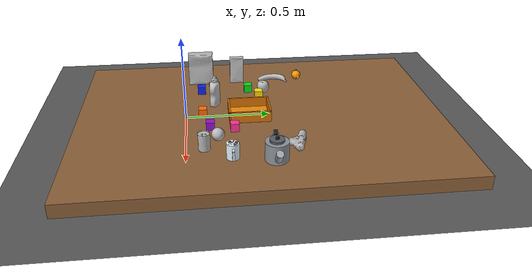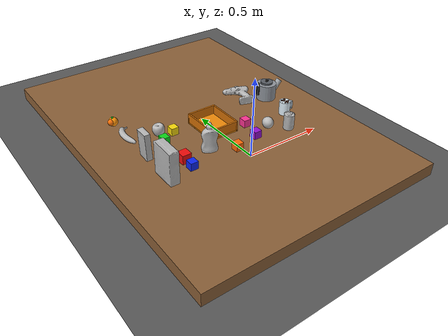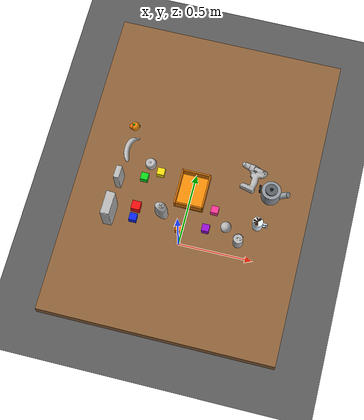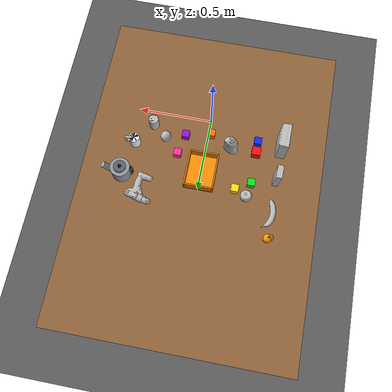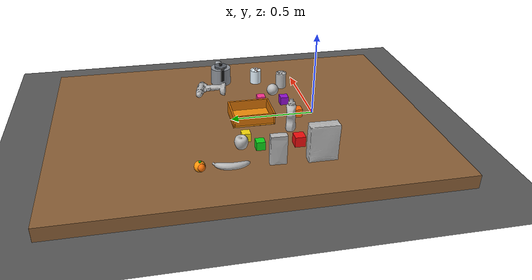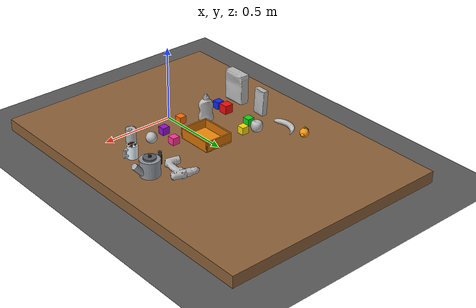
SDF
<?xml version="1.0"?>
<sdf version="1.7">
  <world name="ur3_pick_place">
    <physics name="baseline_physics" type="ode">
      <max_step_size>0.001</max_step_size>
      <real_time_factor>1.0</real_time_factor>
      <gravity>0 0 -9.81</gravity>
    </physics>

    <plugin filename="libignition-gazebo-physics-system.so"
            name="ignition::gazebo::systems::Physics"/>
    <plugin filename="libignition-gazebo-user-commands-system.so"
            name="ignition::gazebo::systems::UserCommands"/>
    <plugin filename="libignition-gazebo-scene-broadcaster-system.so"
            name="ignition::gazebo::systems::SceneBroadcaster"/>
    <plugin filename="libignition-gazebo-sensors-system.so"
            name="ignition::gazebo::systems::Sensors">
      <render_engine>ogre2</render_engine>
    </plugin>
    <plugin filename="libignition-gazebo-contact-system.so"
            name="ignition::gazebo::systems::Contact"/>

    <scene>
      <ambient>0.45 0.45 0.45 1</ambient>
      <background>0.75 0.80 0.85 1</background>
      <shadows>true</shadows>
    </scene>

    <light name="key_light" type="directional">
      <pose>0 0 2 0 0 0</pose>
      <cast_shadows>true</cast_shadows>
      <diffuse>0.9 0.9 0.9 1</diffuse>
      <specular>0.2 0.2 0.2 1</specular>
      <direction>-0.4 0.2 -1.0</direction>
    </light>

    <model name="ground_plane">
      <static>true</static>
      <pose>0 0 -0.081 0 0 0</pose>
      <link name="link">
        <collision name="collision">
          <geometry><plane><normal>0 0 1</normal><size>10 10</size></plane></geometry>
        </collision>
        <visual name="visual">
          <geometry><plane><normal>0 0 1</normal><size>10 10</size></plane></geometry>
          <material><ambient>0.25 0.25 0.25 1</ambient><diffuse>0.35 0.35 0.35 1</diffuse></material>
        </visual>
      </link>
      <plugin filename="ignition-gazebo-label-system" name="ignition::gazebo::systems::Label"><label>41</label></plugin>
    </model>

    <model name="work_table">
      <static>true</static>
      <pose>0 0.45 -0.04 0 0 0</pose>
      <link name="table_link">
        <collision name="collision">
          <geometry><box><size>1.6 2.2 0.08</size></box></geometry>
        </collision>
        <visual name="visual">
          <geometry><box><size>1.6 2.2 0.08</size></box></geometry>
          <material><ambient>0.45 0.30 0.18 1</ambient><diffuse>0.55 0.38 0.22 1</diffuse></material>
        </visual>
      </link>
      <plugin filename="ignition-gazebo-label-system" name="ignition::gazebo::systems::Label"><label>40</label></plugin>
    </model>

    <model name="top_table_camera">
      <static>true</static>
      <!-- SDF camera looks along local +X; +pi/2 pitch maps it toward -Z. -->
      <pose>0 0.45 1.80 0 1.57079632679 0</pose>
      <link name="top_table_camera_link">
        <sensor name="top_table_rgbd" type="rgbd_camera">
          <camera>
            <horizontal_fov>1.10</horizontal_fov>
            <image>
              <width>640</width>
              <height>480</height>
              <format>R8G8B8</format>
            </image>
            <clip><near>0.10</near><far>3.0</far></clip>
            <depth_camera>
              <clip><near>0.10</near><far>3.0</far></clip>
            </depth_camera>
            <optical_frame_id>top_table_camera_optical_frame</optical_frame_id>
          </camera>
          <always_on>true</always_on>
          <update_rate>30</update_rate>
          <visualize>true</visualize>
          <topic>/top_table_camera</topic>
          <gz_frame_id>top_table_camera_optical_frame</gz_frame_id>
        </sensor>
      </link>
    </model>

    <model name="red_cube">
      <!-- Pick slot: left of the robot (-X) and forward (+Y). -->
      <pose>-0.34 0.18 0.03 0 0 0</pose>
      <link name="cube_link">
        <inertial><mass>0.08</mass><inertia><ixx>0.000048</ixx><iyy>0.000048</iyy><izz>0.000048</izz></inertia></inertial>
        <collision name="collision">
          <geometry><box><size>0.06 0.06 0.06</size></box></geometry>
          <surface><friction><ode><mu>1.2</mu><mu2>1.2</mu2></ode></friction></surface>
        </collision>
        <visual name="visual">
          <geometry><box><size>0.06 0.06 0.06</size></box></geometry>
          <material><ambient>0.8 0.03 0.03 1</ambient><diffuse>0.95 0.05 0.05 1</diffuse></material>
        </visual>
      </link>
      <!-- Ground-truth oracle for perception-layer validation. -->
      <plugin filename="ignition-gazebo-pose-publisher-system"
              name="gz::sim::systems::PosePublisher">
        <publish_link_pose>false</publish_link_pose>
        <publish_collision_pose>false</publish_collision_pose>
        <publish_visual_pose>false</publish_visual_pose>
        <publish_nested_model_pose>false</publish_nested_model_pose>
        <use_pose_vector_msg>true</use_pose_vector_msg>
        <static_publisher>false</static_publisher>
        <update_frequency>15</update_frequency>
      </plugin>
      <plugin filename="ignition-gazebo-label-system" name="ignition::gazebo::systems::Label"><label>1</label></plugin>
    </model>

    <model name="blue_cube">
      <pose>-0.34 0.10 0.025 0 0 0</pose>
      <link name="cube_link">
        <inertial><mass>0.06</mass><inertia><ixx>0.000025</ixx><iyy>0.000025</iyy><izz>0.000025</izz></inertia></inertial>
        <collision name="collision"><geometry><box><size>0.05 0.05 0.05</size></box></geometry></collision>
        <visual name="visual"><geometry><box><size>0.05 0.05 0.05</size></box></geometry><material><ambient>0.03 0.10 0.8 1</ambient><diffuse>0.05 0.15 0.95 1</diffuse></material></visual>
      </link>
      <plugin filename="ignition-gazebo-label-system" name="ignition::gazebo::systems::Label"><label>2</label></plugin>
    </model>

    <model name="green_cube">
      <pose>-0.34 0.40 0.025 0 0 0</pose>
      <link name="cube_link">
        <inertial><mass>0.06</mass><inertia><ixx>0.000025</ixx><iyy>0.000025</iyy><izz>0.000025</izz></inertia></inertial>
        <collision name="collision"><geometry><box><size>0.05 0.05 0.05</size></box></geometry></collision>
        <visual name="visual"><geometry><box><size>0.05 0.05 0.05</size></box></geometry><material><ambient>0.03 0.65 0.08 1</ambient><diffuse>0.05 0.85 0.10 1</diffuse></material></visual>
      </link>
      <plugin filename="ignition-gazebo-label-system" name="ignition::gazebo::systems::Label"><label>3</label></plugin>
    </model>

    <model name="yellow_cube">
      <pose>-0.24 0.46 0.025 0 0 0</pose>
      <link name="cube_link">
        <inertial><mass>0.06</mass><inertia><ixx>0.000025</ixx><iyy>0.000025</iyy><izz>0.000025</izz></inertia></inertial>
        <collision name="collision"><geometry><box><size>0.05 0.05 0.05</size></box></geometry></collision>
        <visual name="visual"><geometry><box><size>0.05 0.05 0.05</size></box></geometry><material><ambient>0.80 0.68 0.02 1</ambient><diffuse>0.98 0.86 0.04 1</diffuse></material></visual>
      </link>
      <plugin filename="ignition-gazebo-label-system" name="ignition::gazebo::systems::Label"><label>4</label></plugin>
    </model>

    <model name="orange_cube">
      <pose>-0.02 0.10 0.025 0 0 0</pose>
      <link name="cube_link">
        <inertial><mass>0.06</mass><inertia><ixx>0.000025</ixx><iyy>0.000025</iyy><izz>0.000025</izz></inertia></inertial>
        <collision name="collision"><geometry><box><size>0.05 0.05 0.05</size></box></geometry></collision>
        <visual name="visual"><geometry><box><size>0.05 0.05 0.05</size></box></geometry><material><ambient>0.88 0.28 0.01 1</ambient><diffuse>1.00 0.42 0.02 1</diffuse></material></visual>
      </link>
      <plugin filename="ignition-gazebo-label-system" name="ignition::gazebo::systems::Label"><label>5</label></plugin>
    </model>

    <model name="purple_cube">
      <pose>0.15 0.14 0.025 0 0 0</pose>
      <link name="cube_link">
        <inertial><mass>0.06</mass><inertia><ixx>0.000025</ixx><iyy>0.000025</iyy><izz>0.000025</izz></inertia></inertial>
        <collision name="collision"><geometry><box><size>0.05 0.05 0.05</size></box></geometry></collision>
        <visual name="visual"><geometry><box><size>0.05 0.05 0.05</size></box></geometry><material><ambient>0.42 0.03 0.62 1</ambient><diffuse>0.58 0.06 0.82 1</diffuse></material></visual>
      </link>
      <plugin filename="ignition-gazebo-label-system" name="ignition::gazebo::systems::Label"><label>6</label></plugin>
    </model>

    <model name="pink_cube">
      <pose>0.18 0.28 0.025 0 0 0</pose>
      <link name="cube_link">
        <inertial><mass>0.06</mass><inertia><ixx>0.000025</ixx><iyy>0.000025</iyy><izz>0.000025</izz></inertia></inertial>
        <collision name="collision"><geometry><box><size>0.05 0.05 0.05</size></box></geometry></collision>
        <visual name="visual"><geometry><box><size>0.05 0.05 0.05</size></box></geometry><material><ambient>0.88 0.10 0.42 1</ambient><diffuse>1.00 0.20 0.58 1</diffuse></material></visual>
      </link>
      <plugin filename="ignition-gazebo-label-system" name="ignition::gazebo::systems::Label"><label>7</label></plugin>
    </model>

    <!-- Selected CC BY 4.0 meshes from ai-habitat/ycb.  Visual origins are
         re-centered here; lightweight primitive collisions keep Gazebo fast. -->
    <model name="ycb_cracker_box">
      <pose>-0.50 0.10 0.106710 0 0 0</pose>
      <link name="object_link">
        <inertial><mass>0.18</mass><inertia><ixx>0.00108</ixx><iyy>0.00076</iyy><izz>0.00048</izz></inertia></inertial>
        <collision name="collision"><geometry><box><size>0.071720 0.163986 0.213421</size></box></geometry><surface><friction><ode><mu>1.1</mu><mu2>1.1</mu2></ode></friction></surface></collision>
        <visual name="ycb_visual"><pose>0.012893 0.014149 -0.103525 0 0 0</pose><geometry><mesh><uri>../models/ycb/003_cracker_box/003_cracker_box.obj</uri></mesh></geometry></visual>
      </link>
      <plugin filename="ignition-gazebo-pose-publisher-system" name="gz::sim::systems::PosePublisher"><publish_link_pose>false</publish_link_pose><publish_collision_pose>false</publish_collision_pose><publish_visual_pose>false</publish_visual_pose><publish_nested_model_pose>false</publish_nested_model_pose><use_pose_vector_msg>true</use_pose_vector_msg><static_publisher>false</static_publisher><update_frequency>15</update_frequency></plugin>
      <plugin filename="ignition-gazebo-label-system" name="ignition::gazebo::systems::Label"><label>21</label></plugin>
    </model>

    <model name="ycb_sugar_box">
      <pose>-0.50 0.34 0.088107 0 0 0</pose>
      <link name="object_link">
        <inertial><mass>0.15</mass><inertia><ixx>0.00050</ixx><iyy>0.00042</iyy><izz>0.00014</izz></inertia></inertial>
        <collision name="collision"><geometry><box><size>0.049450 0.093374 0.176214</size></box></geometry><surface><friction><ode><mu>1.1</mu><mu2>1.1</mu2></ode></friction></surface></collision>
        <visual name="ycb_visual"><pose>0.007099 0.016887 -0.088023 0 0 0</pose><geometry><mesh><uri>../models/ycb/004_sugar_box/004_sugar_box.obj</uri></mesh></geometry></visual>
      </link>
      <plugin filename="ignition-gazebo-pose-publisher-system" name="gz::sim::systems::PosePublisher"><publish_link_pose>false</publish_link_pose><publish_collision_pose>false</publish_collision_pose><publish_visual_pose>false</publish_visual_pose><publish_nested_model_pose>false</publish_nested_model_pose><use_pose_vector_msg>true</use_pose_vector_msg><static_publisher>false</static_publisher><update_frequency>15</update_frequency></plugin>
      <plugin filename="ignition-gazebo-label-system" name="ignition::gazebo::systems::Label"><label>22</label></plugin>
    </model>

    <model name="ycb_tomato_soup_can">
      <pose>0.38 0.10 0.050948 0 0 0</pose>
      <link name="object_link">
        <inertial><mass>0.12</mass><inertia><ixx>0.00013</ixx><iyy>0.00013</iyy><izz>0.00014</izz></inertia></inertial>
        <collision name="collision"><geometry><cylinder><radius>0.03395</radius><length>0.101895</length></cylinder></geometry><surface><friction><ode><mu>1.1</mu><mu2>1.1</mu2></ode></friction></surface></collision>
        <visual name="ycb_visual"><pose>0.009150 -0.084021 -0.050990 0 0 0</pose><geometry><mesh><uri>../models/ycb/005_tomato_soup_can/005_tomato_soup_can.obj</uri></mesh></geometry></visual>
      </link>
      <plugin filename="ignition-gazebo-pose-publisher-system" name="gz::sim::systems::PosePublisher"><publish_link_pose>false</publish_link_pose><publish_collision_pose>false</publish_collision_pose><publish_visual_pose>false</publish_visual_pose><publish_nested_model_pose>false</publish_nested_model_pose><use_pose_vector_msg>true</use_pose_vector_msg><static_publisher>false</static_publisher><update_frequency>15</update_frequency></plugin>
      <plugin filename="ignition-gazebo-label-system" name="ignition::gazebo::systems::Label"><label>23</label></plugin>
    </model>

    <model name="ycb_mustard_bottle">
      <!-- Default target is isolated inside the calibrated wrist-camera workspace. -->
      <pose>-0.165 0.18 0.095695 0 0 0</pose>
      <link name="object_link">
        <inertial><mass>0.18</mass><inertia><ixx>0.00061</ixx><iyy>0.00069</iyy><izz>0.00021</izz></inertia></inertial>
        <!-- The main bottle body is approximated by a graspable cylinder;
             DINO/RGB-D still observes the full original visual geometry. -->
        <collision name="collision"><geometry><cylinder><radius>0.030</radius><length>0.185</length></cylinder></geometry><surface><friction><ode><mu>1.1</mu><mu2>1.1</mu2></ode></friction></surface></collision>
        <visual name="ycb_visual"><pose>0.015323 0.023535 -0.092468 0 0 0</pose><geometry><mesh><uri>../models/ycb/006_mustard_bottle/006_mustard_bottle.obj</uri></mesh></geometry></visual>
      </link>
      <plugin filename="ignition-gazebo-pose-publisher-system" name="gz::sim::systems::PosePublisher"><publish_link_pose>false</publish_link_pose><publish_collision_pose>false</publish_collision_pose><publish_visual_pose>false</publish_visual_pose><publish_nested_model_pose>false</publish_nested_model_pose><use_pose_vector_msg>true</use_pose_vector_msg><static_publisher>false</static_publisher><update_frequency>15</update_frequency></plugin>
      <plugin filename="ignition-gazebo-label-system" name="ignition::gazebo::systems::Label"><label>24</label></plugin>
    </model>

    <model name="ycb_banana">
      <pose>-0.48 0.58 0.018376 0 0 0.25</pose>
      <link name="object_link">
        <inertial><mass>0.12</mass><inertia><ixx>0.00033</ixx><iyy>0.00013</iyy><izz>0.00044</izz></inertia></inertial>
        <collision name="collision"><geometry><box><size>0.108971 0.178395 0.036752</size></box></geometry><surface><friction><ode><mu>1.1</mu><mu2>1.1</mu2></ode></friction></surface></collision>
        <visual name="ycb_visual"><pose>-0.011491 0.007339 -0.017956 0 0 0</pose><geometry><mesh><uri>../models/ycb/011_banana/011_banana.obj</uri></mesh></geometry></visual>
      </link>
      <plugin filename="ignition-gazebo-pose-publisher-system" name="gz::sim::systems::PosePublisher"><publish_link_pose>false</publish_link_pose><publish_collision_pose>false</publish_collision_pose><publish_visual_pose>false</publish_visual_pose><publish_nested_model_pose>false</publish_nested_model_pose><use_pose_vector_msg>true</use_pose_vector_msg><static_publisher>false</static_publisher><update_frequency>15</update_frequency></plugin>
      <plugin filename="ignition-gazebo-label-system" name="ignition::gazebo::systems::Label"><label>25</label></plugin>
    </model>

    <model name="ycb_apple">
      <pose>-0.32 0.50 0.035953 0 0 0</pose>
      <link name="object_link">
        <inertial><mass>0.12</mass><inertia><ixx>0.00007</ixx><iyy>0.00007</iyy><izz>0.00007</izz></inertia></inertial>
        <collision name="collision"><geometry><sphere><radius>0.03771</radius></sphere></geometry><surface><friction><ode><mu>1.1</mu><mu2>1.1</mu2></ode></friction></surface></collision>
        <visual name="ycb_visual"><pose>-0.000863 0.003786 -0.035541 0 0 0</pose><geometry><mesh><uri>../models/ycb/013_apple/013_apple.obj</uri></mesh></geometry></visual>
      </link>
      <plugin filename="ignition-gazebo-pose-publisher-system" name="gz::sim::systems::PosePublisher"><publish_link_pose>false</publish_link_pose><publish_collision_pose>false</publish_collision_pose><publish_visual_pose>false</publish_visual_pose><publish_nested_model_pose>false</publish_nested_model_pose><use_pose_vector_msg>true</use_pose_vector_msg><static_publisher>false</static_publisher><update_frequency>15</update_frequency></plugin>
      <plugin filename="ignition-gazebo-label-system" name="ignition::gazebo::systems::Label"><label>26</label></plugin>
    </model>

    <model name="ycb_orange">
      <!-- Reset at the collision-sphere support height.  The old mesh-derived
           z=0.035684 penetrated the table by 1.3 mm and injected a rolling
           impulse as soon as physics resumed. -->
      <pose>0.28 0.18 0.037010 0 0 0</pose>
      <link name="object_link">
        <inertial><mass>0.13</mass><inertia><ixx>0.00007</ixx><iyy>0.00007</iyy><izz>0.00007</izz></inertia></inertial>
        <velocity_decay><linear>0.25</linear><angular>0.80</angular></velocity_decay>
        <collision name="collision"><geometry><sphere><radius>0.03701</radius></sphere></geometry><surface><friction><ode><mu>1.5</mu><mu2>1.5</mu2></ode></friction></surface></collision>
        <visual name="ycb_visual"><pose>0.006944 0.018358 -0.035408 0 0 0</pose><geometry><mesh><uri>../models/ycb/017_orange/017_orange.obj</uri></mesh></geometry></visual>
      </link>
      <plugin filename="ignition-gazebo-pose-publisher-system" name="gz::sim::systems::PosePublisher"><publish_link_pose>false</publish_link_pose><publish_collision_pose>false</publish_collision_pose><publish_visual_pose>false</publish_visual_pose><publish_nested_model_pose>false</publish_nested_model_pose><use_pose_vector_msg>true</use_pose_vector_msg><static_publisher>false</static_publisher><update_frequency>15</update_frequency></plugin>
      <plugin filename="ignition-gazebo-label-system" name="ignition::gazebo::systems::Label"><label>27</label></plugin>
    </model>

    <model name="ycb_power_drill">
      <pose>0.36 0.57 0.028689 0 0 -0.25</pose>
      <link name="object_link">
        <inertial><mass>0.45</mass><inertia><ixx>0.00137</ixx><iyy>0.00139</iyy><izz>0.00258</izz></inertia></inertial>
        <collision name="collision"><geometry><box><size>0.183995 0.187244 0.057377</size></box></geometry><surface><friction><ode><mu>1.1</mu><mu2>1.1</mu2></ode></friction></surface></collision>
        <visual name="ycb_visual"><pose>0.045866 -0.010493 -0.025266 0 0 0</pose><geometry><mesh><uri>../models/ycb/035_power_drill/035_power_drill.obj</uri></mesh></geometry></visual>
      </link>
      <plugin filename="ignition-gazebo-pose-publisher-system" name="gz::sim::systems::PosePublisher"><publish_link_pose>false</publish_link_pose><publish_collision_pose>false</publish_collision_pose><publish_visual_pose>false</publish_visual_pose><publish_nested_model_pose>false</publish_nested_model_pose><use_pose_vector_msg>true</use_pose_vector_msg><static_publisher>false</static_publisher><update_frequency>15</update_frequency></plugin>
      <plugin filename="ignition-gazebo-label-system" name="ignition::gazebo::systems::Label"><label>28</label></plugin>
    </model>

    <model name="mango">
      <pose>-0.50 0.75 0.030 0 0 0.35</pose>
      <link name="mango_link">
        <inertial><mass>0.16</mass><inertia><ixx>0.000060</ixx><iyy>0.000060</iyy><izz>0.000060</izz></inertia></inertial>
        <collision name="fruit_collision"><geometry><sphere><radius>0.030</radius></sphere></geometry></collision>
        <visual name="mango_body"><geometry><sphere><radius>0.030</radius></sphere></geometry><material><ambient>0.92 0.38 0.01 1</ambient><diffuse>1.0 0.58 0.03 1</diffuse></material></visual>
        <visual name="mango_lobe"><pose>-0.019 0 0.004 0 0 0</pose><geometry><sphere><radius>0.021</radius></sphere></geometry><material><ambient>0.74 0.25 0.01 1</ambient><diffuse>0.95 0.43 0.02 1</diffuse></material></visual>
        <visual name="mango_tip"><pose>0.021 0 -0.005 0 0 0</pose><geometry><sphere><radius>0.014</radius></sphere></geometry><material><ambient>0.96 0.56 0.03 1</ambient><diffuse>1.0 0.67 0.05 1</diffuse></material></visual>
        <visual name="mango_leaf"><pose>-0.006 0 0.032 0 0.45 0</pose><geometry><sphere><radius>0.007</radius></sphere></geometry><material><ambient>0.05 0.40 0.04 1</ambient><diffuse>0.07 0.65 0.07 1</diffuse></material></visual>
      </link>
      <plugin filename="ignition-gazebo-label-system" name="ignition::gazebo::systems::Label"><label>29</label></plugin>
    </model>

    <model name="cup">
      <static>true</static>
      <pose>0.48 0.25 0.045 0 0 0</pose>
      <link name="cup_link">
        <collision name="cup_collision"><geometry><cylinder><radius>0.035</radius><length>0.090</length></cylinder></geometry></collision>
        <visual name="ceramic_body"><geometry><cylinder><radius>0.035</radius><length>0.090</length></cylinder></geometry><material><ambient>0.80 0.87 0.92 1</ambient><diffuse>0.90 0.96 1.0 1</diffuse><specular>0.35 0.35 0.35 1</specular></material></visual>
        <visual name="coffee"><pose>0 0 0.043 0 0 0</pose><geometry><cylinder><radius>0.029</radius><length>0.004</length></cylinder></geometry><material><ambient>0.10 0.035 0.01 1</ambient><diffuse>0.18 0.06 0.015 1</diffuse></material></visual>
        <visual name="handle_upper"><pose>0.047 0 0.022 0 0 0</pose><geometry><box><size>0.030 0.012 0.012</size></box></geometry><material><ambient>0.82 0.89 0.95 1</ambient></material></visual>
        <visual name="handle_lower"><pose>0.047 0 -0.022 0 0 0</pose><geometry><box><size>0.030 0.012 0.012</size></box></geometry><material><ambient>0.82 0.89 0.95 1</ambient></material></visual>
        <visual name="handle_side"><pose>0.060 0 0 0 0 0</pose><geometry><box><size>0.012 0.012 0.052</size></box></geometry><material><ambient>0.82 0.89 0.95 1</ambient></material></visual>
      </link>
      <plugin filename="ignition-gazebo-label-system" name="ignition::gazebo::systems::Label"><label>30</label></plugin>
    </model>

    <model name="kettle">
      <static>true</static>
      <pose>0.52 0.48 0.055 0 0 0</pose>
      <link name="kettle_link">
        <collision name="body_collision"><geometry><cylinder><radius>0.065</radius><length>0.110</length></cylinder></geometry></collision>
        <visual name="steel_body"><geometry><cylinder><radius>0.065</radius><length>0.110</length></cylinder></geometry><material><ambient>0.34 0.36 0.38 1</ambient><diffuse>0.56 0.58 0.61 1</diffuse><specular>0.75 0.75 0.75 1</specular></material></visual>
        <visual name="lid"><pose>0 0 0.062 0 0 0</pose><geometry><cylinder><radius>0.041</radius><length>0.012</length></cylinder></geometry><material><ambient>0.18 0.20 0.22 1</ambient><diffuse>0.35 0.37 0.40 1</diffuse></material></visual>
        <visual name="lid_knob"><pose>0 0 0.074 0 0 0</pose><geometry><sphere><radius>0.012</radius></sphere></geometry><material><ambient>0.04 0.04 0.04 1</ambient><diffuse>0.08 0.08 0.08 1</diffuse></material></visual>
        <visual name="spout"><pose>0.085 0 0.012 0 0.72 0</pose><geometry><cylinder><radius>0.020</radius><length>0.090</length></cylinder></geometry><material><ambient>0.38 0.40 0.42 1</ambient><diffuse>0.62 0.64 0.66 1</diffuse></material></visual>
        <visual name="handle_left"><pose>-0.076 0 0.030 0 0 0</pose><geometry><box><size>0.014 0.022 0.080</size></box></geometry><material><ambient>0.03 0.03 0.03 1</ambient><diffuse>0.07 0.07 0.07 1</diffuse></material></visual>
        <visual name="handle_top"><pose>-0.076 0 0.072 0 0 0</pose><geometry><box><size>0.014 0.022 0.014</size></box></geometry><material><ambient>0.03 0.03 0.03 1</ambient><diffuse>0.07 0.07 0.07 1</diffuse></material></visual>
      </link>
      <plugin filename="ignition-gazebo-label-system" name="ignition::gazebo::systems::Label"><label>31</label></plugin>
    </model>

    <!-- The tray is directly in front of the robot according to the same +Y
         convention, centered on the robot's forward axis. -->
    <model name="target_bin">
      <static>true</static>
      <pose>0 0.38 0 0 0 0</pose>
      <link name="bin_link">
        <collision name="floor_collision"><pose>0 0 0.005 0 0 0</pose><geometry><box><size>0.20 0.25 0.01</size></box></geometry></collision>
        <visual name="floor_visual"><pose>0 0 0.005 0 0 0</pose><geometry><box><size>0.20 0.25 0.01</size></box></geometry><material><ambient>0.85 0.45 0.02 1</ambient><diffuse>0.95 0.55 0.03 1</diffuse></material></visual>
        <collision name="front_collision"><pose>0.095 0 0.035 0 0 0</pose><geometry><box><size>0.01 0.25 0.07</size></box></geometry></collision>
        <visual name="front_visual"><pose>0.095 0 0.035 0 0 0</pose><geometry><box><size>0.01 0.25 0.07</size></box></geometry><material><ambient>0.85 0.45 0.02 1</ambient></material></visual>
        <collision name="back_collision"><pose>-0.095 0 0.035 0 0 0</pose><geometry><box><size>0.01 0.25 0.07</size></box></geometry></collision>
        <visual name="back_visual"><pose>-0.095 0 0.035 0 0 0</pose><geometry><box><size>0.01 0.25 0.07</size></box></geometry><material><ambient>0.85 0.45 0.02 1</ambient></material></visual>
        <collision name="left_collision"><pose>0 0.12 0.035 0 0 0</pose><geometry><box><size>0.20 0.01 0.07</size></box></geometry></collision>
        <visual name="left_visual"><pose>0 0.12 0.035 0 0 0</pose><geometry><box><size>0.20 0.01 0.07</size></box></geometry><material><ambient>0.85 0.45 0.02 1</ambient></material></visual>
        <collision name="right_collision"><pose>0 -0.12 0.035 0 0 0</pose><geometry><box><size>0.20 0.01 0.07</size></box></geometry></collision>
        <visual name="right_visual"><pose>0 -0.12 0.035 0 0 0</pose><geometry><box><size>0.20 0.01 0.07</size></box></geometry><material><ambient>0.85 0.45 0.02 1</ambient></material></visual>
      </link>
      <plugin filename="ignition-gazebo-label-system" name="ignition::gazebo::systems::Label"><label>32</label></plugin>
    </model>
  </world>
</sdf>
